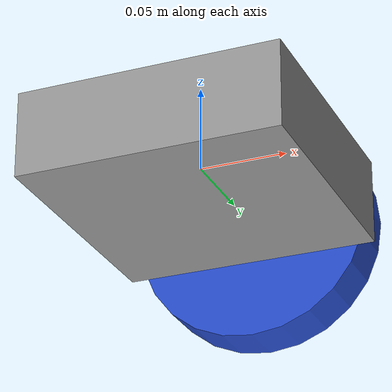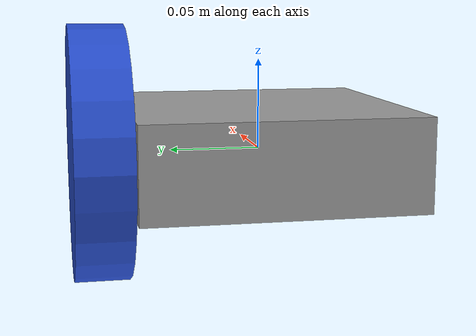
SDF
<?xml version="1.0" ?>
<sdf version="1.3">
    <model name="wheel">
        <link name="wheel_link">
            <visual name="wheel_support">
                <pose>0.0 0.0 0.0 0.0 0.0 0.0</pose>
                <geometry>
                    <box>
                        <size>0.15 0.15 0.05</size>
                    </box>
                </geometry>
                <material>
                    <script>
                        <uri>file://media/materials/scripts/gazebo.material</uri>
                        <name>Gazebo/Grey</name>
                    </script>
                </material>
            </visual>
            <visual name="wheel">
                <pose>0.0 0.09 0.0 0 1.5707 1.5707</pose>
                <geometry>
                    <cylinder>
                        <radius>0.07</radius>
                        <length>0.03</length>
                    </cylinder>
                </geometry>
                <material>
                    <script>
                        <uri>file://media/materials/scripts/gazebo.material</uri>
                        <name>Gazebo/Blue</name>
                    </script>
                </material>
            </visual>
        </link>
    </model>
</sdf>
